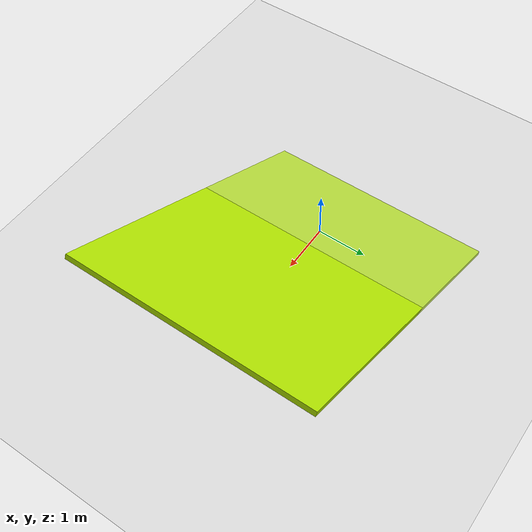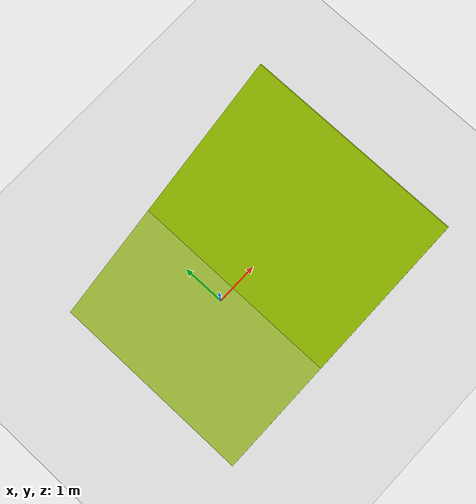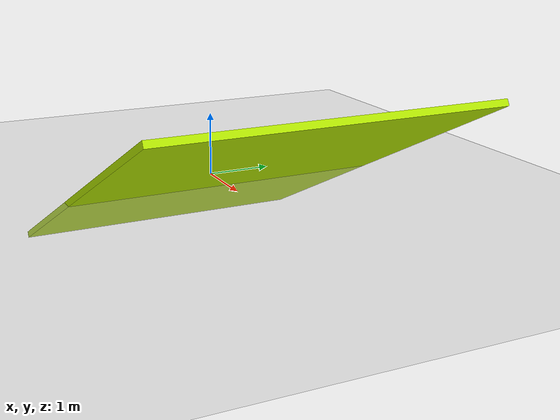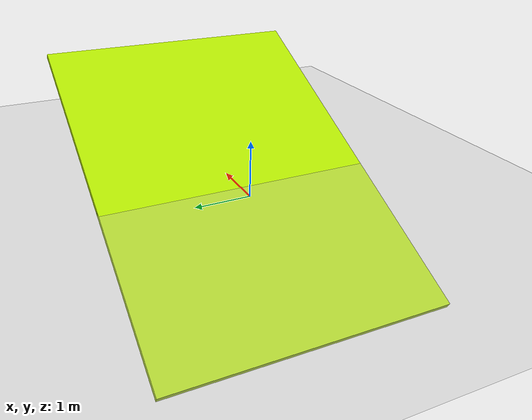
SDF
<?xml version="1.0" ?>
<sdf version="1.6">
  <world name="default">
    <include>
      <uri>model://ground_plane</uri>
    </include>
    <include>
      <uri>model://sun</uri>
    </include>
    <model name="box">
      <static>true</static>
      <pose>0.80 0 0.15 0 1.10 0</pose>
      <link name="link">
        <collision name="collision">
          <geometry>
            <box>
              <size>0.1 5 7</size>
            </box>
          </geometry>
        <surface>
          <contact>
              <ode/>
            </contact>
            <friction>
              <ode>
                <mu>0.35</mu>
                <mu2>0.35</mu2>
              </ode>
              <torsional>
                <ode/>
              </torsional>
            </friction>
            <bounce/>
        </surface>
        </collision>
        <visual name="visual">
          <geometry>
            <box>
              <size>0.1 5 7</size>
            </box>
          </geometry>
          <material>
            <ambient>0.5 0.50 0.00 1</ambient>
            <diffuse>0.7 0.9 0 1</diffuse>
            <specular>0.2 0.2 0.2 64</specular>
            <emissive>0.1 0 0.1 1</emissive>
          </material>
        </visual>
      </link>
    </model>
  </world>
</sdf>
